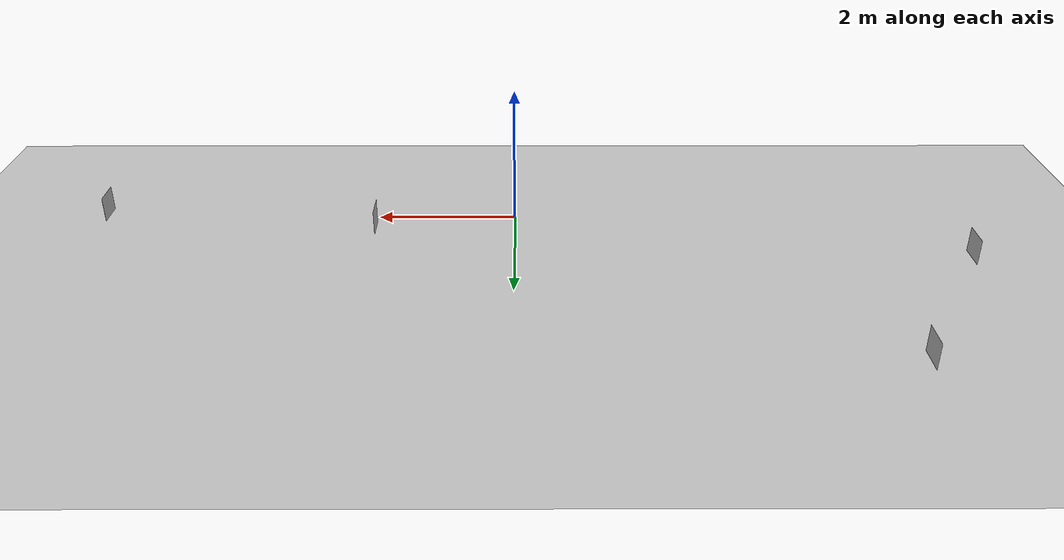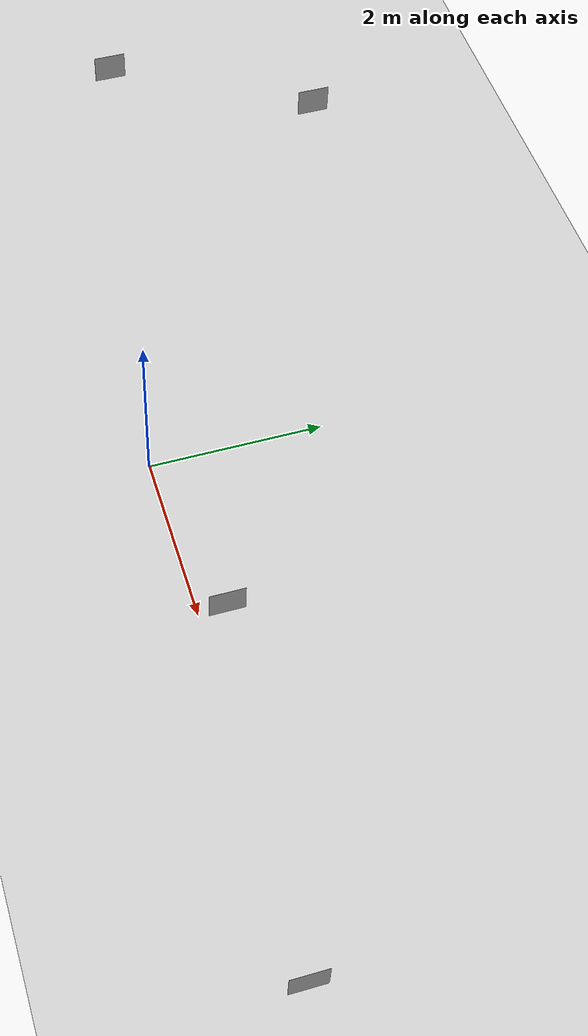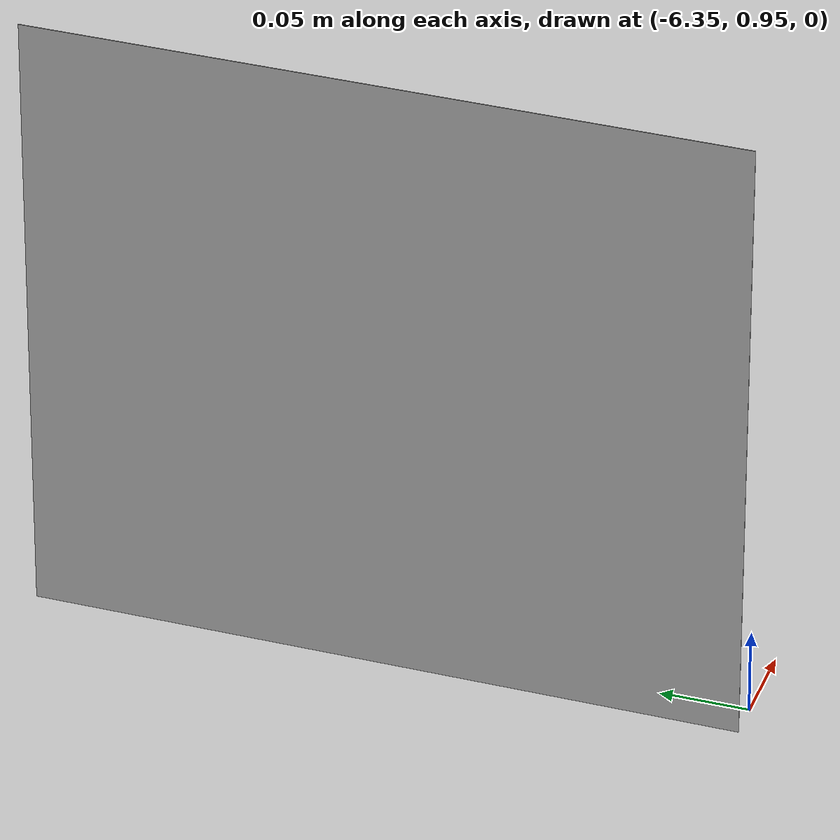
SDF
<sdf version="1.6">
 <world name="ev_world">
  <include><uri>model://sun</uri></include>
  <include><uri>model://ground_plane</uri></include>
  <model name="livingroom_qr">
   <static>true</static>
   <pose>2.03 0.31 0.16 0 1.5708 0</pose>
   <link name="link">
    <visual name="visual">
     <geometry><plane><normal>0 0 1</normal><size>0.4 0.4</size></plane></geometry>
     <material>
      <script>
       <uri>file://media/materials/scripts</uri>
       <uri>file://media/materials/textures</uri>
       <name>Aysenaz/LivingroomQR</name>
      </script>
     </material>
    </visual>
   </link>
  </model>
  <model name="kitchen_qr">
   <static>true</static>
   <pose>6.05 -0.11 0.16 0 1.5708 0</pose>
   <link name="link">
    <visual name="visual">
     <geometry><plane><normal>0 0 1</normal><size>0.4 0.4</size></plane></geometry>
     <material>
      <script>
       <uri>file://media/materials/scripts</uri>
       <uri>file://media/materials/textures</uri>
       <name>Aysenaz/KitchenQR</name>
      </script>
     </material>
    </visual>
   </link>
  </model>
  <model name="bedroom_qr">
   <static>true</static>
   <pose>-5.00 3.54 0.16 0 1.5708 0</pose>
   <link name="link">
    <visual name="visual">
     <geometry><plane><normal>0 0 1</normal><size>0.4 0.4</size></plane></geometry>
     <material>
      <script>
       <uri>file://media/materials/scripts</uri>
       <uri>file://media/materials/textures</uri>
       <name>Aysenaz/BedroomQR</name>
      </script>
     </material>
    </visual>
   </link>
  </model>
  <model name="bathroom_qr">
   <static>true</static>
   <pose>-6.37 1.15 0.16 0 1.5708 0</pose>
   <link name="link">
    <visual name="visual">
     <geometry><plane><normal>0 0 1</normal><size>0.4 0.4</size></plane></geometry>
     <material>
      <script>
       <uri>file://media/materials/scripts</uri>
       <uri>file://media/materials/textures</uri>
       <name>Aysenaz/BathroomQR</name>
      </script>
     </material>
    </visual>
   </link>
  </model>
 </world>
</sdf>
